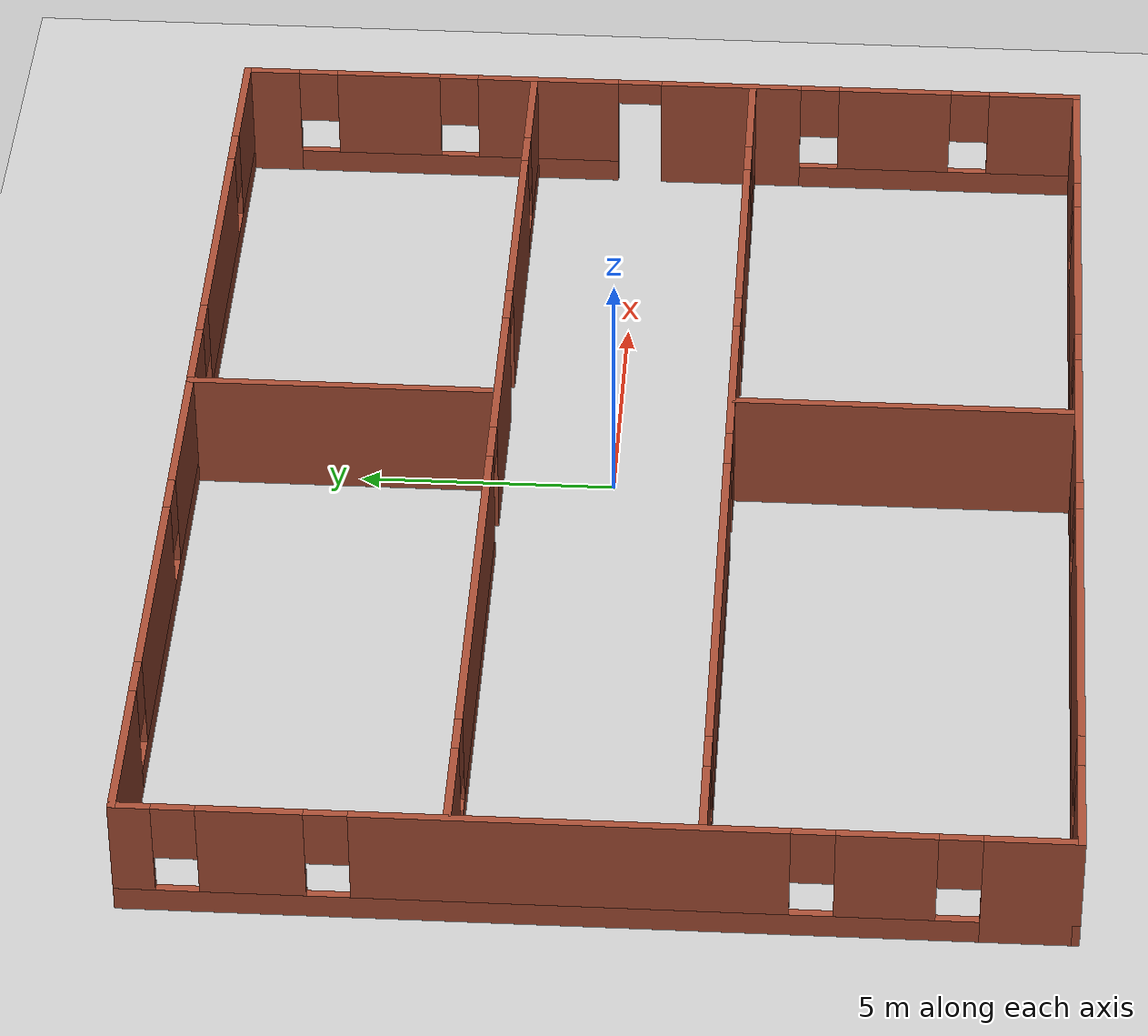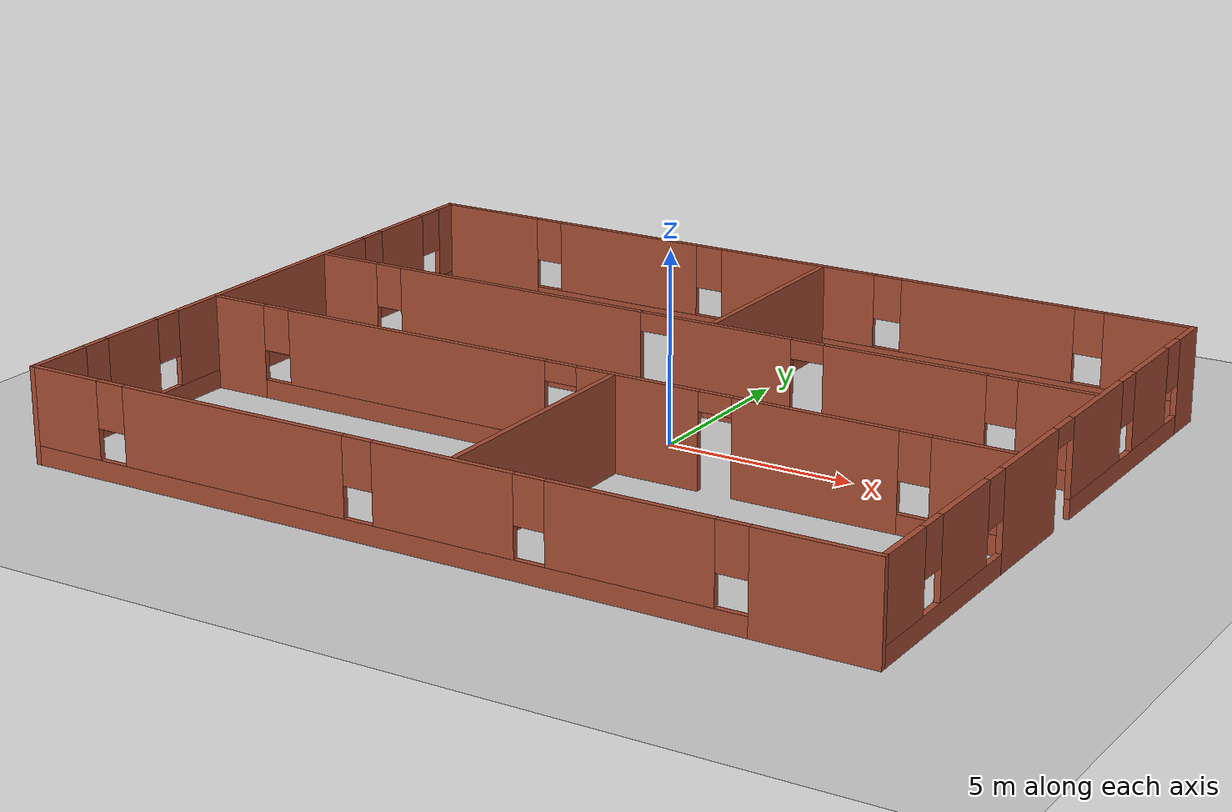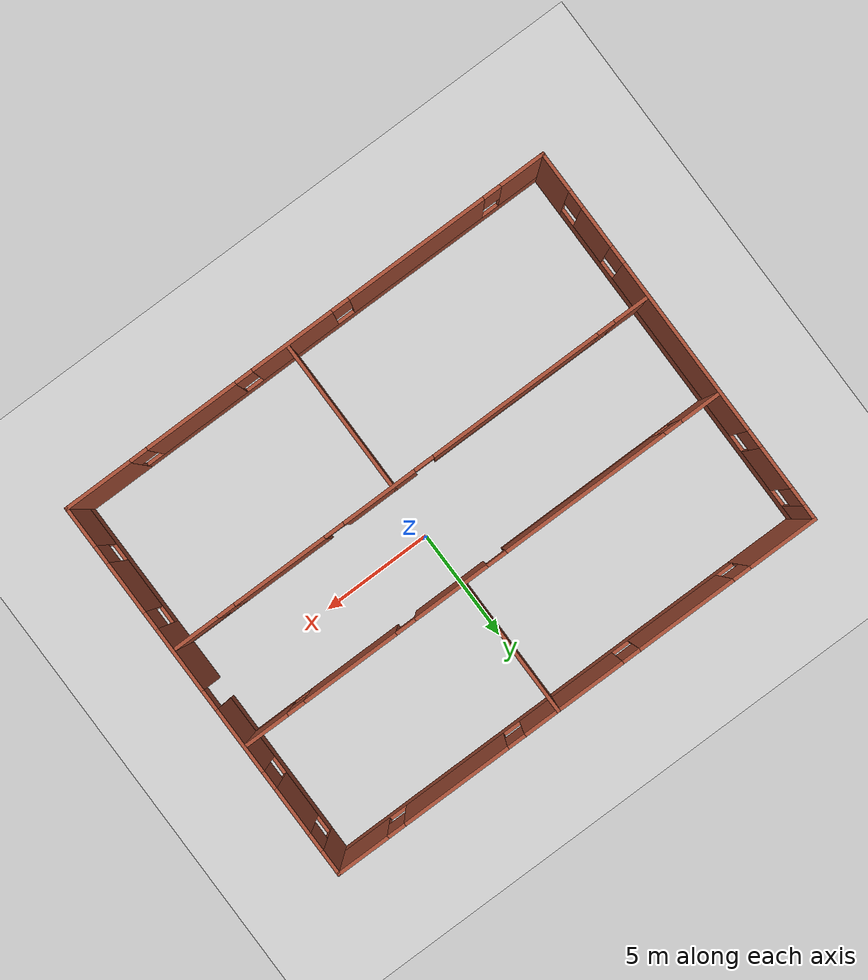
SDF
<sdf version="1.6">
 <world name="default">
  <model name="ground_plane">
   <static>1</static>
   <link name="link">
    <collision name="collision">
     <geometry><plane><normal>0 0 1</normal><size>100 100</size></plane></geometry>
     <surface><friction><ode><mu>100</mu><mu2>50</mu2></ode></friction></surface>
    </collision>
    <visual name="visual">
     <cast_shadows>0</cast_shadows>
     <geometry><plane><normal>0 0 1</normal><size>100 100</size></plane></geometry>
     <material>
      <script><uri>file://media/materials/scripts/gazebo.material</uri><name>Gazebo/Grey</name></script>
     </material>
    </visual>
   </link>
  </model>
  <model name="HOTEL_SK">
   <pose>-1.03269 -0.373158 0 0 -0 0</pose>
   <link name="Wall_10">
    <pose>-0.035498 -1.92449 0 0 -0 0</pose>
    <visual name="Wall_10_Visual_0">
     <pose>-10.4451 0 1.25 0 -0 0</pose>
     <geometry><box><size>1.60983 0.15 2.5</size></box></geometry>
     <material>
      <script><uri>file://media/materials/scripts/gazebo.material</uri><name>Gazebo/Bricks</name></script>
      <ambient>1 1 1 1</ambient>
     </material>
    </visual>
    <collision name="Wall_10_Collision_0">
     <geometry><box><size>1.60983 0.15 2.5</size></box></geometry>
     <pose>-10.4451 0 1.25 0 -0 0</pose>
    </collision>
    <visual name="Wall_10_Visual_1">
     <pose>1.53547 0 1.25 0 -0 0</pose>
     <geometry><box><size>3.36994 0.15 2.5</size></box></geometry>
     <material>
      <script><uri>file://media/materials/scripts/gazebo.material</uri><name>Gazebo/Bricks</name></script>
      <ambient>1 1 1 1</ambient>
     </material>
    </visual>
    <collision name="Wall_10_Collision_1">
     <geometry><box><size>3.36994 0.15 2.5</size></box></geometry>
     <pose>1.53547 0 1.25 0 -0 0</pose>
    </collision>
    <visual name="Wall_10_Visual_2">
     <pose>6.26349 0 1.25 0 -0 0</pose>
     <geometry><box><size>4.2861 0.15 2.5</size></box></geometry>
     <material>
      <script><uri>file://media/materials/scripts/gazebo.material</uri><name>Gazebo/Bricks</name></script>
      <ambient>1 1 1 1</ambient>
     </material>
    </visual>
    <collision name="Wall_10_Collision_2">
     <geometry><box><size>4.2861 0.15 2.5</size></box></geometry>
     <pose>6.26349 0 1.25 0 -0 0</pose>
    </collision>
    <visual name="Wall_10_Visual_3">
     <pose>-5.34484 0 0.25 0 -0 0</pose>
     <geometry><box><size>8.59066 0.15 0.5</size></box></geometry>
     <material>
      <script><uri>file://media/materials/scripts/gazebo.material</uri><name>Gazebo/Bricks</name></script>
      <ambient>1 1 1 1</ambient>
     </material>
    </visual>
    <collision name="Wall_10_Collision_3">
     <geometry><box><size>8.59066 0.15 0.5</size></box></geometry>
     <pose>-5.34484 0 0.25 0 -0 0</pose>
    </collision>
    <visual name="Wall_10_Visual_4">
     <pose>9.82827 0 0.25 0 -0 0</pose>
     <geometry><box><size>2.84346 0.15 0.5</size></box></geometry>
     <material>
      <script><uri>file://media/materials/scripts/gazebo.material</uri><name>Gazebo/Bricks</name></script>
      <ambient>1 1 1 1</ambient>
     </material>
    </visual>
    <collision name="Wall_10_Collision_4">
     <geometry><box><size>2.84346 0.15 0.5</size></box></geometry>
     <pose>9.82827 0 0.25 0 -0 0</pose>
    </collision>
    <visual name="Wall_10_Visual_5">
     <pose>-4.94484 0 1.5 0 -0 0</pose>
     <geometry><box><size>7.79066 0.15 2</size></box></geometry>
     <material>
      <script><uri>file://media/materials/scripts/gazebo.material</uri><name>Gazebo/Bricks</name></script>
      <ambient>1 1 1 1</ambient>
     </material>
    </visual>
    <collision name="Wall_10_Collision_5">
     <geometry><box><size>7.79066 0.15 2</size></box></geometry>
     <pose>-4.94484 0 1.5 0 -0 0</pose>
    </collision>
    <visual name="Wall_10_Visual_6">
     <pose>-4.94484 0 1.5 0 -0 0</pose>
     <geometry><box><size>7.79066 0.15 2</size></box></geometry>
     <material>
      <script><uri>file://media/materials/scripts/gazebo.material</uri><name>Gazebo/Bricks</name></script>
      <ambient>1 1 1 1</ambient>
     </material>
    </visual>
    <collision name="Wall_10_Collision_6">
     <geometry><box><size>7.79066 0.15 2</size></box></geometry>
     <pose>-4.94484 0 1.5 0 -0 0</pose>
    </collision>
    <visual name="Wall_10_Visual_7">
     <pose>10.2283 0 1.5 0 -0 0</pose>
     <geometry><box><size>2.04346 0.15 2</size></box></geometry>
     <material>
      <script><uri>file://media/materials/scripts/gazebo.material</uri><name>Gazebo/Bricks</name></script>
      <ambient>1 1 1 1</ambient>
     </material>
    </visual>
    <collision name="Wall_10_Collision_7">
     <geometry><box><size>2.04346 0.15 2</size></box></geometry>
     <pose>10.2283 0 1.5 0 -0 0</pose>
    </collision>
    <visual name="Wall_10_Visual_8">
     <pose>-9.24017 0 1.9 0 -0 0</pose>
     <geometry><box><size>0.8 0.15 1.2</size></box></geometry>
     <material>
      <script><uri>file://media/materials/scripts/gazebo.material</uri><name>Gazebo/Bricks</name></script>
      <ambient>1 1 1 1</ambient>
     </material>
    </visual>
    <collision name="Wall_10_Collision_8">
     <geometry><box><size>0.8 0.15 1.2</size></box></geometry>
     <pose>-9.24017 0 1.9 0 -0 0</pose>
    </collision>
    <visual name="Wall_10_Visual_9">
     <pose>8.80654 0 1.9 0 -0 0</pose>
     <geometry><box><size>0.8 0.15 1.2</size></box></geometry>
     <material>
      <script><uri>file://media/materials/scripts/gazebo.material</uri><name>Gazebo/Bricks</name></script>
      <ambient>1 1 1 1</ambient>
     </material>
    </visual>
    <collision name="Wall_10_Collision_9">
     <geometry><box><size>0.8 0.15 1.2</size></box></geometry>
     <pose>8.80654 0 1.9 0 -0 0</pose>
    </collision>
    <visual name="Wall_10_Visual_10">
     <pose>3.67044 0 2.25 0 -0 0</pose>
     <geometry><box><size>0.9 0.15 0.5</size></box></geometry>
     <material>
      <script><uri>file://media/materials/scripts/gazebo.material</uri><name>Gazebo/Bricks</name></script>
      <ambient>1 1 1 1</ambient>
     </material>
    </visual>
    <collision name="Wall_10_Collision_10">
     <geometry><box><size>0.9 0.15 0.5</size></box></geometry>
     <pose>3.67044 0 2.25 0 -0 0</pose>
    </collision>
    <visual name="Wall_10_Visual_11">
     <pose>-0.599507 0 2.25 0 -0 0</pose>
     <geometry><box><size>0.9 0.15 0.5</size></box></geometry>
     <material>
      <script><uri>file://media/materials/scripts/gazebo.material</uri><name>Gazebo/Bricks</name></script>
      <ambient>1 1 1 1</ambient>
     </material>
    </visual>
    <collision name="Wall_10_Collision_11">
     <geometry><box><size>0.9 0.15 0.5</size></box></geometry>
     <pose>-0.599507 0 2.25 0 -0 0</pose>
    </collision>
    <visual name="Wall_10_Visual_12">
     <pose>-0.599507 0 2.25 0 -0 0</pose>
     <geometry><box><size>0.9 0.15 0.5</size></box></geometry>
     <material>
      <script><uri>file://media/materials/scripts/gazebo.material</uri><name>Gazebo/Bricks</name></script>
      <ambient>1 1 1 1</ambient>
     </material>
    </visual>
    <collision name="Wall_10_Collision_12">
     <geometry><box><size>0.9 0.15 0.5</size></box></geometry>
     <pose>-0.599507 0 2.25 0 -0 0</pose>
    </collision>
   </link>
   <link name="Wall_12">
    <collision name="Wall_12_Collision">
     <geometry><box><size>6 0.15 2.5</size></box></geometry>
     <pose>0 0 1.25 0 -0 0</pose>
    </collision>
    <visual name="Wall_12_Visual">
     <pose>0 0 1.25 0 -0 0</pose>
     <geometry><box><size>6 0.15 2.5</size></box></geometry>
     <material>
      <script><uri>file://media/materials/scripts/gazebo.material</uri><name>Gazebo/Bricks</name></script>
      <ambient>1 1 1 1</ambient>
     </material>
    </visual>
    <pose>0.890996 5.73932 0 0 0 -1.5708</pose>
   </link>
   <link name="Wall_14">
    <collision name="Wall_14_Collision">
     <geometry><box><size>6.75 0.15 2.5</size></box></geometry>
     <pose>0 0 1.25 0 -0 0</pose>
    </collision>
    <visual name="Wall_14_Visual">
     <pose>0 0 1.25 0 -0 0</pose>
     <geometry><box><size>6.75 0.15 2.5</size></box></geometry>
     <material>
      <script><uri>file://media/materials/scripts/gazebo.material</uri><name>Gazebo/Bricks</name></script>
      <ambient>1 1 1 1</ambient>
     </material>
    </visual>
    <pose>0.855817 -5.22449 0 0 0 -1.5708</pose>
   </link>
   <link name="Wall_2">
    <pose>11.3 0 0 0 0 -1.5708</pose>
    <visual name="Wall_2_Visual_0">
     <pose>-8.1684 0 1.25 0 -0 0</pose>
     <geometry><box><size>1.16319 0.15 2.5</size></box></geometry>
     <material>
      <script><uri>file://media/materials/scripts/gazebo.material</uri><name>Gazebo/Bricks</name></script>
      <ambient>1 1 1 1</ambient>
     </material>
    </visual>
    <collision name="Wall_2_Collision_0">
     <geometry><box><size>1.16319 0.15 2.5</size></box></geometry>
     <pose>-8.1684 0 1.25 0 -0 0</pose>
    </collision>
    <visual name="Wall_2_Visual_1">
     <pose>1.47458 0 1.25 0 -0 0</pose>
     <geometry><box><size>2.91413 0.15 2.5</size></box></geometry>
     <material>
      <script><uri>file://media/materials/scripts/gazebo.material</uri><name>Gazebo/Bricks</name></script>
      <ambient>1 1 1 1</ambient>
     </material>
    </visual>
    <collision name="Wall_2_Collision_1">
     <geometry><box><size>2.91413 0.15 2.5</size></box></geometry>
     <pose>1.47458 0 1.25 0 -0 0</pose>
    </collision>
    <visual name="Wall_2_Visual_2">
     <pose>-4.23465 0 0.25 0 -0 0</pose>
     <geometry><box><size>6.70432 0.15 0.5</size></box></geometry>
     <material>
      <script><uri>file://media/materials/scripts/gazebo.material</uri><name>Gazebo/Bricks</name></script>
      <ambient>1 1 1 1</ambient>
     </material>
    </visual>
    <collision name="Wall_2_Collision_2">
     <geometry><box><size>6.70432 0.15 0.5</size></box></geometry>
     <pose>-4.23465 0 0.25 0 -0 0</pose>
    </collision>
    <visual name="Wall_2_Visual_3">
     <pose>5.84082 0 0.25 0 -0 0</pose>
     <geometry><box><size>5.81836 0.15 0.5</size></box></geometry>
     <material>
      <script><uri>file://media/materials/scripts/gazebo.material</uri><name>Gazebo/Bricks</name></script>
      <ambient>1 1 1 1</ambient>
     </material>
    </visual>
    <collision name="Wall_2_Collision_3">
     <geometry><box><size>5.81836 0.15 0.5</size></box></geometry>
     <pose>5.84082 0 0.25 0 -0 0</pose>
    </collision>
    <visual name="Wall_2_Visual_4">
     <pose>-5.7093 0 1.5 0 -0 0</pose>
     <geometry><box><size>2.15502 0.15 2</size></box></geometry>
     <material>
      <script><uri>file://media/materials/scripts/gazebo.material</uri><name>Gazebo/Bricks</name></script>
      <ambient>1 1 1 1</ambient>
     </material>
    </visual>
    <collision name="Wall_2_Collision_4">
     <geometry><box><size>2.15502 0.15 2</size></box></geometry>
     <pose>-5.7093 0 1.5 0 -0 0</pose>
    </collision>
    <visual name="Wall_2_Visual_5">
     <pose>-2.35714 0 1.5 0 -0 0</pose>
     <geometry><box><size>2.94931 0.15 2</size></box></geometry>
     <material>
      <script><uri>file://media/materials/scripts/gazebo.material</uri><name>Gazebo/Bricks</name></script>
      <ambient>1 1 1 1</ambient>
     </material>
    </visual>
    <collision name="Wall_2_Collision_5">
     <geometry><box><size>2.94931 0.15 2</size></box></geometry>
     <pose>-2.35714 0 1.5 0 -0 0</pose>
    </collision>
    <visual name="Wall_2_Visual_6">
     <pose>-2.35714 0 1.5 0 -0 0</pose>
     <geometry><box><size>2.94931 0.15 2</size></box></geometry>
     <material>
      <script><uri>file://media/materials/scripts/gazebo.material</uri><name>Gazebo/Bricks</name></script>
      <ambient>1 1 1 1</ambient>
     </material>
    </visual>
    <collision name="Wall_2_Collision_6">
     <geometry><box><size>2.94931 0.15 2</size></box></geometry>
     <pose>-2.35714 0 1.5 0 -0 0</pose>
    </collision>
    <visual name="Wall_2_Visual_7">
     <pose>4.8971 0 1.5 0 -0 0</pose>
     <geometry><box><size>2.33091 0.15 2</size></box></geometry>
     <material>
      <script><uri>file://media/materials/scripts/gazebo.material</uri><name>Gazebo/Bricks</name></script>
      <ambient>1 1 1 1</ambient>
     </material>
    </visual>
    <collision name="Wall_2_Collision_7">
     <geometry><box><size>2.33091 0.15 2</size></box></geometry>
     <pose>4.8971 0 1.5 0 -0 0</pose>
    </collision>
    <visual name="Wall_2_Visual_8">
     <pose>7.80628 0 1.5 0 -0 0</pose>
     <geometry><box><size>1.88745 0.15 2</size></box></geometry>
     <material>
      <script><uri>file://media/materials/scripts/gazebo.material</uri><name>Gazebo/Bricks</name></script>
      <ambient>1 1 1 1</ambient>
     </material>
    </visual>
    <collision name="Wall_2_Collision_8">
     <geometry><box><size>1.88745 0.15 2</size></box></geometry>
     <pose>7.80628 0 1.5 0 -0 0</pose>
    </collision>
    <visual name="Wall_2_Visual_9">
     <pose>-7.18681 0 1.9 0 -0 0</pose>
     <geometry><box><size>0.8 0.15 1.2</size></box></geometry>
     <material>
      <script><uri>file://media/materials/scripts/gazebo.material</uri><name>Gazebo/Bricks</name></script>
      <ambient>1 1 1 1</ambient>
     </material>
    </visual>
    <collision name="Wall_2_Collision_9">
     <geometry><box><size>0.8 0.15 1.2</size></box></geometry>
     <pose>-7.18681 0 1.9 0 -0 0</pose>
    </collision>
    <visual name="Wall_2_Visual_10">
     <pose>3.33164 0 1.9 0 -0 0</pose>
     <geometry><box><size>0.8 0.15 1.2</size></box></geometry>
     <material>
      <script><uri>file://media/materials/scripts/gazebo.material</uri><name>Gazebo/Bricks</name></script>
      <ambient>1 1 1 1</ambient>
     </material>
    </visual>
    <collision name="Wall_2_Collision_10">
     <geometry><box><size>0.8 0.15 1.2</size></box></geometry>
     <pose>3.33164 0 1.9 0 -0 0</pose>
    </collision>
    <visual name="Wall_2_Visual_11">
     <pose>-4.23179 0 1.9 0 -0 0</pose>
     <geometry><box><size>0.8 0.15 1.2</size></box></geometry>
     <material>
      <script><uri>file://media/materials/scripts/gazebo.material</uri><name>Gazebo/Bricks</name></script>
      <ambient>1 1 1 1</ambient>
     </material>
    </visual>
    <collision name="Wall_2_Collision_11">
     <geometry><box><size>0.8 0.15 1.2</size></box></geometry>
     <pose>-4.23179 0 1.9 0 -0 0</pose>
    </collision>
    <visual name="Wall_2_Visual_12">
     <pose>6.46255 0 1.9 0 -0 0</pose>
     <geometry><box><size>0.8 0.15 1.2</size></box></geometry>
     <material>
      <script><uri>file://media/materials/scripts/gazebo.material</uri><name>Gazebo/Bricks</name></script>
      <ambient>1 1 1 1</ambient>
     </material>
    </visual>
    <collision name="Wall_2_Collision_12">
     <geometry><box><size>0.8 0.15 1.2</size></box></geometry>
     <pose>6.46255 0 1.9 0 -0 0</pose>
    </collision>
    <visual name="Wall_2_Visual_13">
     <pose>-0.432485 0 2.25 0 -0 0</pose>
     <geometry><box><size>0.9 0.15 0.5</size></box></geometry>
     <material>
      <script><uri>file://media/materials/scripts/gazebo.material</uri><name>Gazebo/Bricks</name></script>
      <ambient>1 1 1 1</ambient>
     </material>
    </visual>
    <collision name="Wall_2_Collision_13">
     <geometry><box><size>0.9 0.15 0.5</size></box></geometry>
     <pose>-0.432485 0 2.25 0 -0 0</pose>
    </collision>
    <visual name="Wall_2_Visual_14">
     <pose>-0.432485 0 2.25 0 -0 0</pose>
     <geometry><box><size>0.9 0.15 0.5</size></box></geometry>
     <material>
      <script><uri>file://media/materials/scripts/gazebo.material</uri><name>Gazebo/Bricks</name></script>
      <ambient>1 1 1 1</ambient>
     </material>
    </visual>
    <collision name="Wall_2_Collision_14">
     <geometry><box><size>0.9 0.15 0.5</size></box></geometry>
     <pose>-0.432485 0 2.25 0 -0 0</pose>
    </collision>
   </link>
   <link name="Wall_3">
    <pose>0 -8.675 0 0 -0 3.14159</pose>
    <visual name="Wall_3_Visual_0">
     <pose>-9.83329 0 1.25 0 -0 0</pose>
     <geometry><box><size>3.08343 0.15 2.5</size></box></geometry>
     <material>
      <script><uri>file://media/materials/scripts/gazebo.material</uri><name>Gazebo/Bricks</name></script>
      <ambient>1 1 1 1</ambient>
     </material>
    </visual>
    <collision name="Wall_3_Collision_0">
     <geometry><box><size>3.08343 0.15 2.5</size></box></geometry>
     <pose>-9.83329 0 1.25 0 -0 0</pose>
    </collision>
    <visual name="Wall_3_Visual_1">
     <pose>1.54171 0 0.25 0 -0 0</pose>
     <geometry><box><size>19.6666 0.15 0.5</size></box></geometry>
     <material>
      <script><uri>file://media/materials/scripts/gazebo.material</uri><name>Gazebo/Bricks</name></script>
      <ambient>1 1 1 1</ambient>
     </material>
    </visual>
    <collision name="Wall_3_Collision_1">
     <geometry><box><size>19.6666 0.15 0.5</size></box></geometry>
     <pose>1.54171 0 0.25 0 -0 0</pose>
    </collision>
    <visual name="Wall_3_Visual_2">
     <pose>-5.39388 0 1.5 0 -0 0</pose>
     <geometry><box><size>4.19538 0.15 2</size></box></geometry>
     <material>
      <script><uri>file://media/materials/scripts/gazebo.material</uri><name>Gazebo/Bricks</name></script>
      <ambient>1 1 1 1</ambient>
     </material>
    </visual>
    <collision name="Wall_3_Collision_2">
     <geometry><box><size>4.19538 0.15 2</size></box></geometry>
     <pose>-5.39388 0 1.5 0 -0 0</pose>
    </collision>
    <visual name="Wall_3_Visual_3">
     <pose>-0.609566 0 1.5 0 -0 0</pose>
     <geometry><box><size>3.77324 0.15 2</size></box></geometry>
     <material>
      <script><uri>file://media/materials/scripts/gazebo.material</uri><name>Gazebo/Bricks</name></script>
      <ambient>1 1 1 1</ambient>
     </material>
    </visual>
    <collision name="Wall_3_Collision_3">
     <geometry><box><size>3.77324 0.15 2</size></box></geometry>
     <pose>-0.609566 0 1.5 0 -0 0</pose>
    </collision>
    <visual name="Wall_3_Visual_4">
     <pose>5.28288 0 1.5 0 -0 0</pose>
     <geometry><box><size>6.41165 0.15 2</size></box></geometry>
     <material>
      <script><uri>file://media/materials/scripts/gazebo.material</uri><name>Gazebo/Bricks</name></script>
      <ambient>1 1 1 1</ambient>
     </material>
    </visual>
    <collision name="Wall_3_Collision_4">
     <geometry><box><size>6.41165 0.15 2</size></box></geometry>
     <pose>5.28288 0 1.5 0 -0 0</pose>
    </collision>
    <visual name="Wall_3_Visual_5">
     <pose>10.3318 0 1.5 0 -0 0</pose>
     <geometry><box><size>2.0863 0.15 2</size></box></geometry>
     <material>
      <script><uri>file://media/materials/scripts/gazebo.material</uri><name>Gazebo/Bricks</name></script>
      <ambient>1 1 1 1</ambient>
     </material>
    </visual>
    <collision name="Wall_3_Collision_5">
     <geometry><box><size>2.0863 0.15 2</size></box></geometry>
     <pose>10.3318 0 1.5 0 -0 0</pose>
    </collision>
    <visual name="Wall_3_Visual_6">
     <pose>-7.89157 0 1.9 0 -0 0</pose>
     <geometry><box><size>0.8 0.15 1.2</size></box></geometry>
     <material>
      <script><uri>file://media/materials/scripts/gazebo.material</uri><name>Gazebo/Bricks</name></script>
      <ambient>1 1 1 1</ambient>
     </material>
    </visual>
    <collision name="Wall_3_Collision_6">
     <geometry><box><size>0.8 0.15 1.2</size></box></geometry>
     <pose>-7.89157 0 1.9 0 -0 0</pose>
    </collision>
    <visual name="Wall_3_Visual_7">
     <pose>-2.89619 0 1.9 0 -0 0</pose>
     <geometry><box><size>0.8 0.15 1.2</size></box></geometry>
     <material>
      <script><uri>file://media/materials/scripts/gazebo.material</uri><name>Gazebo/Bricks</name></script>
      <ambient>1 1 1 1</ambient>
     </material>
    </visual>
    <collision name="Wall_3_Collision_7">
     <geometry><box><size>0.8 0.15 1.2</size></box></geometry>
     <pose>-2.89619 0 1.9 0 -0 0</pose>
    </collision>
    <visual name="Wall_3_Visual_8">
     <pose>1.67705 0 1.9 0 -0 0</pose>
     <geometry><box><size>0.8 0.15 1.2</size></box></geometry>
     <material>
      <script><uri>file://media/materials/scripts/gazebo.material</uri><name>Gazebo/Bricks</name></script>
      <ambient>1 1 1 1</ambient>
     </material>
    </visual>
    <collision name="Wall_3_Collision_8">
     <geometry><box><size>0.8 0.15 1.2</size></box></geometry>
     <pose>1.67705 0 1.9 0 -0 0</pose>
    </collision>
    <visual name="Wall_3_Visual_9">
     <pose>8.8887 0 1.9 0 -0 0</pose>
     <geometry><box><size>0.8 0.15 1.2</size></box></geometry>
     <material>
      <script><uri>file://media/materials/scripts/gazebo.material</uri><name>Gazebo/Bricks</name></script>
      <ambient>1 1 1 1</ambient>
     </material>
    </visual>
    <collision name="Wall_3_Collision_9">
     <geometry><box><size>0.8 0.15 1.2</size></box></geometry>
     <pose>8.8887 0 1.9 0 -0 0</pose>
    </collision>
   </link>
   <link name="Wall_4">
    <pose>-11.3 0 0 0 -0 1.5708</pose>
    <visual name="Wall_4_Visual_0">
     <pose>-7.84145 0 1.25 0 -0 0</pose>
     <geometry><box><size>1.81709 0.15 2.5</size></box></geometry>
     <material>
      <script><uri>file://media/materials/scripts/gazebo.material</uri><name>Gazebo/Bricks</name></script>
      <ambient>1 1 1 1</ambient>
     </material>
    </visual>
    <collision name="Wall_4_Collision_0">
     <geometry><box><size>1.81709 0.15 2.5</size></box></geometry>
     <pose>-7.84145 0 1.25 0 -0 0</pose>
    </collision>
    <visual name="Wall_4_Visual_1">
     <pose>0.908545 0 0.25 0 -0 0</pose>
     <geometry><box><size>15.6829 0.15 0.5</size></box></geometry>
     <material>
      <script><uri>file://media/materials/scripts/gazebo.material</uri><name>Gazebo/Bricks</name></script>
      <ambient>1 1 1 1</ambient>
     </material>
    </visual>
    <collision name="Wall_4_Collision_1">
     <geometry><box><size>15.6829 0.15 0.5</size></box></geometry>
     <pose>0.908545 0 0.25 0 -0 0</pose>
    </collision>
    <visual name="Wall_4_Visual_2">
     <pose>-5.21371 0 1.5 0 -0 0</pose>
     <geometry><box><size>1.83841 0.15 2</size></box></geometry>
     <material>
      <script><uri>file://media/materials/scripts/gazebo.material</uri><name>Gazebo/Bricks</name></script>
      <ambient>1 1 1 1</ambient>
     </material>
    </visual>
    <collision name="Wall_4_Collision_2">
     <geometry><box><size>1.83841 0.15 2</size></box></geometry>
     <pose>-5.21371 0 1.5 0 -0 0</pose>
    </collision>
    <visual name="Wall_4_Visual_3">
     <pose>0.467664 0 1.5 0 -0 0</pose>
     <geometry><box><size>7.92433 0.15 2</size></box></geometry>
     <material>
      <script><uri>file://media/materials/scripts/gazebo.material</uri><name>Gazebo/Bricks</name></script>
      <ambient>1 1 1 1</ambient>
     </material>
    </visual>
    <collision name="Wall_4_Collision_3">
     <geometry><box><size>7.92433 0.15 2</size></box></geometry>
     <pose>0.467664 0 1.5 0 -0 0</pose>
    </collision>
    <visual name="Wall_4_Visual_4">
     <pose>6.2018 0 1.5 0 -0 0</pose>
     <geometry><box><size>1.94394 0.15 2</size></box></geometry>
     <material>
      <script><uri>file://media/materials/scripts/gazebo.material</uri><name>Gazebo/Bricks</name></script>
      <ambient>1 1 1 1</ambient>
     </material>
    </visual>
    <collision name="Wall_4_Collision_4">
     <geometry><box><size>1.94394 0.15 2</size></box></geometry>
     <pose>6.2018 0 1.5 0 -0 0</pose>
    </collision>
    <visual name="Wall_4_Visual_5">
     <pose>8.36189 0 1.5 0 -0 0</pose>
     <geometry><box><size>0.776226 0.15 2</size></box></geometry>
     <material>
      <script><uri>file://media/materials/scripts/gazebo.material</uri><name>Gazebo/Bricks</name></script>
      <ambient>1 1 1 1</ambient>
     </material>
    </visual>
    <collision name="Wall_4_Collision_5">
     <geometry><box><size>0.776226 0.15 2</size></box></geometry>
     <pose>8.36189 0 1.5 0 -0 0</pose>
    </collision>
    <visual name="Wall_4_Visual_6">
     <pose>-6.53291 0 1.9 0 -0 0</pose>
     <geometry><box><size>0.8 0.15 1.2</size></box></geometry>
     <material>
      <script><uri>file://media/materials/scripts/gazebo.material</uri><name>Gazebo/Bricks</name></script>
      <ambient>1 1 1 1</ambient>
     </material>
    </visual>
    <collision name="Wall_4_Collision_6">
     <geometry><box><size>0.8 0.15 1.2</size></box></geometry>
     <pose>-6.53291 0 1.9 0 -0 0</pose>
    </collision>
    <visual name="Wall_4_Visual_7">
     <pose>-3.8945 0 1.9 0 -0 0</pose>
     <geometry><box><size>0.8 0.15 1.2</size></box></geometry>
     <material>
      <script><uri>file://media/materials/scripts/gazebo.material</uri><name>Gazebo/Bricks</name></script>
      <ambient>1 1 1 1</ambient>
     </material>
    </visual>
    <collision name="Wall_4_Collision_7">
     <geometry><box><size>0.8 0.15 1.2</size></box></geometry>
     <pose>-3.8945 0 1.9 0 -0 0</pose>
    </collision>
    <visual name="Wall_4_Visual_8">
     <pose>4.82983 0 1.9 0 -0 0</pose>
     <geometry><box><size>0.8 0.15 1.2</size></box></geometry>
     <material>
      <script><uri>file://media/materials/scripts/gazebo.material</uri><name>Gazebo/Bricks</name></script>
      <ambient>1 1 1 1</ambient>
     </material>
    </visual>
    <collision name="Wall_4_Collision_8">
     <geometry><box><size>0.8 0.15 1.2</size></box></geometry>
     <pose>4.82983 0 1.9 0 -0 0</pose>
    </collision>
    <visual name="Wall_4_Visual_9">
     <pose>7.57377 0 1.9 0 -0 0</pose>
     <geometry><box><size>0.8 0.15 1.2</size></box></geometry>
     <material>
      <script><uri>file://media/materials/scripts/gazebo.material</uri><name>Gazebo/Bricks</name></script>
      <ambient>1 1 1 1</ambient>
     </material>
    </visual>
    <collision name="Wall_4_Collision_9">
     <geometry><box><size>0.8 0.15 1.2</size></box></geometry>
     <pose>7.57377 0 1.9 0 -0 0</pose>
    </collision>
   </link>
   <link name="Wall_6">
    <pose>0 8.675 0 0 -0 0</pose>
    <visual name="Wall_6_Visual_0">
     <pose>-9.80417 0 1.25 0 -0 0</pose>
     <geometry><box><size>3.14166 0.15 2.5</size></box></geometry>
     <material>
      <script><uri>file://media/materials/scripts/gazebo.material</uri><name>Gazebo/Bricks</name></script>
      <ambient>1 1 1 1</ambient>
     </material>
    </visual>
    <collision name="Wall_6_Collision_0">
     <geometry><box><size>3.14166 0.15 2.5</size></box></geometry>
     <pose>-9.80417 0 1.25 0 -0 0</pose>
    </collision>
    <visual name="Wall_6_Visual_1">
     <pose>1.57083 0 0.25 0 -0 0</pose>
     <geometry><box><size>19.6083 0.15 0.5</size></box></geometry>
     <material>
      <script><uri>file://media/materials/scripts/gazebo.material</uri><name>Gazebo/Bricks</name></script>
      <ambient>1 1 1 1</ambient>
     </material>
    </visual>
    <collision name="Wall_6_Collision_1">
     <geometry><box><size>19.6083 0.15 0.5</size></box></geometry>
     <pose>1.57083 0 0.25 0 -0 0</pose>
    </collision>
    <visual name="Wall_6_Visual_2">
     <pose>-5.21252 0 1.5 0 -0 0</pose>
     <geometry><box><size>4.44163 0.15 2</size></box></geometry>
     <material>
      <script><uri>file://media/materials/scripts/gazebo.material</uri><name>Gazebo/Bricks</name></script>
      <ambient>1 1 1 1</ambient>
     </material>
    </visual>
    <collision name="Wall_6_Collision_2">
     <geometry><box><size>4.44163 0.15 2</size></box></geometry>
     <pose>-5.21252 0 1.5 0 -0 0</pose>
    </collision>
    <visual name="Wall_6_Visual_3">
     <pose>0.134653 0 1.5 0 -0 0</pose>
     <geometry><box><size>4.65271 0.15 2</size></box></geometry>
     <material>
      <script><uri>file://media/materials/scripts/gazebo.material</uri><name>Gazebo/Bricks</name></script>
      <ambient>1 1 1 1</ambient>
     </material>
    </visual>
    <collision name="Wall_6_Collision_3">
     <geometry><box><size>4.65271 0.15 2</size></box></geometry>
     <pose>0.134653 0 1.5 0 -0 0</pose>
    </collision>
    <visual name="Wall_6_Visual_4">
     <pose>5.71049 0 1.5 0 -0 0</pose>
     <geometry><box><size>4.89896 0.15 2</size></box></geometry>
     <material>
      <script><uri>file://media/materials/scripts/gazebo.material</uri><name>Gazebo/Bricks</name></script>
      <ambient>1 1 1 1</ambient>
     </material>
    </visual>
    <collision name="Wall_6_Collision_4">
     <geometry><box><size>4.89896 0.15 2</size></box></geometry>
     <pose>5.71049 0 1.5 0 -0 0</pose>
    </collision>
    <visual name="Wall_6_Visual_5">
     <pose>10.1675 0 1.5 0 -0 0</pose>
     <geometry><box><size>2.41503 0.15 2</size></box></geometry>
     <material>
      <script><uri>file://media/materials/scripts/gazebo.material</uri><name>Gazebo/Bricks</name></script>
      <ambient>1 1 1 1</ambient>
     </material>
    </visual>
    <collision name="Wall_6_Collision_5">
     <geometry><box><size>2.41503 0.15 2</size></box></geometry>
     <pose>10.1675 0 1.5 0 -0 0</pose>
    </collision>
    <visual name="Wall_6_Visual_6">
     <pose>-7.83334 0 1.9 0 -0 0</pose>
     <geometry><box><size>0.8 0.15 1.2</size></box></geometry>
     <material>
      <script><uri>file://media/materials/scripts/gazebo.material</uri><name>Gazebo/Bricks</name></script>
      <ambient>1 1 1 1</ambient>
     </material>
    </visual>
    <collision name="Wall_6_Collision_6">
     <geometry><box><size>0.8 0.15 1.2</size></box></geometry>
     <pose>-7.83334 0 1.9 0 -0 0</pose>
    </collision>
    <visual name="Wall_6_Visual_7">
     <pose>-2.5917 0 1.9 0 -0 0</pose>
     <geometry><box><size>0.8 0.15 1.2</size></box></geometry>
     <material>
      <script><uri>file://media/materials/scripts/gazebo.material</uri><name>Gazebo/Bricks</name></script>
      <ambient>1 1 1 1</ambient>
     </material>
    </visual>
    <collision name="Wall_6_Collision_7">
     <geometry><box><size>0.8 0.15 1.2</size></box></geometry>
     <pose>-2.5917 0 1.9 0 -0 0</pose>
    </collision>
    <visual name="Wall_6_Visual_8">
     <pose>2.86101 0 1.9 0 -0 0</pose>
     <geometry><box><size>0.8 0.15 1.2</size></box></geometry>
     <material>
      <script><uri>file://media/materials/scripts/gazebo.material</uri><name>Gazebo/Bricks</name></script>
      <ambient>1 1 1 1</ambient>
     </material>
    </visual>
    <collision name="Wall_6_Collision_8">
     <geometry><box><size>0.8 0.15 1.2</size></box></geometry>
     <pose>2.86101 0 1.9 0 -0 0</pose>
    </collision>
    <visual name="Wall_6_Visual_9">
     <pose>8.55997 0 1.9 0 -0 0</pose>
     <geometry><box><size>0.8 0.15 1.2</size></box></geometry>
     <material>
      <script><uri>file://media/materials/scripts/gazebo.material</uri><name>Gazebo/Bricks</name></script>
      <ambient>1 1 1 1</ambient>
     </material>
    </visual>
    <collision name="Wall_6_Collision_9">
     <geometry><box><size>0.8 0.15 1.2</size></box></geometry>
     <pose>8.55997 0 1.9 0 -0 0</pose>
    </collision>
   </link>
   <link name="Wall_8">
    <pose>-0.00032 2.64875 0 0 -0 0</pose>
    <visual name="Wall_8_Visual_0">
     <pose>-10.3571 0 1.25 0 -0 0</pose>
     <geometry><box><size>1.78573 0.15 2.5</size></box></geometry>
     <material>
      <script><uri>file://media/materials/scripts/gazebo.material</uri><name>Gazebo/Bricks</name></script>
      <ambient>1 1 1 1</ambient>
     </material>
    </visual>
    <collision name="Wall_8_Collision_0">
     <geometry><box><size>1.78573 0.15 2.5</size></box></geometry>
     <pose>-10.3571 0 1.25 0 -0 0</pose>
    </collision>
    <visual name="Wall_8_Visual_1">
     <pose>1.47369 0 1.25 0 -0 0</pose>
     <geometry><box><size>3.42315 0.15 2.5</size></box></geometry>
     <material>
      <script><uri>file://media/materials/scripts/gazebo.material</uri><name>Gazebo/Bricks</name></script>
      <ambient>1 1 1 1</ambient>
     </material>
    </visual>
    <collision name="Wall_8_Collision_1">
     <geometry><box><size>3.42315 0.15 2.5</size></box></geometry>
     <pose>1.47369 0 1.25 0 -0 0</pose>
    </collision>
    <visual name="Wall_8_Visual_2">
     <pose>6.26349 0 1.25 0 -0 0</pose>
     <geometry><box><size>4.35646 0.15 2.5</size></box></geometry>
     <material>
      <script><uri>file://media/materials/scripts/gazebo.material</uri><name>Gazebo/Bricks</name></script>
      <ambient>1 1 1 1</ambient>
     </material>
    </visual>
    <collision name="Wall_8_Collision_2">
     <geometry><box><size>4.35646 0.15 2.5</size></box></geometry>
     <pose>6.26349 0 1.25 0 -0 0</pose>
    </collision>
    <visual name="Wall_8_Visual_3">
     <pose>-5.30108 0 0.25 0 -0 0</pose>
     <geometry><box><size>8.32639 0.15 0.5</size></box></geometry>
     <material>
      <script><uri>file://media/materials/scripts/gazebo.material</uri><name>Gazebo/Bricks</name></script>
      <ambient>1 1 1 1</ambient>
     </material>
    </visual>
    <collision name="Wall_8_Collision_3">
     <geometry><box><size>8.32639 0.15 0.5</size></box></geometry>
     <pose>-5.30108 0 0.25 0 -0 0</pose>
    </collision>
    <visual name="Wall_8_Visual_4">
     <pose>9.84586 0 0.25 0 -0 0</pose>
     <geometry><box><size>2.80828 0.15 0.5</size></box></geometry>
     <material>
      <script><uri>file://media/materials/scripts/gazebo.material</uri><name>Gazebo/Bricks</name></script>
      <ambient>1 1 1 1</ambient>
     </material>
    </visual>
    <collision name="Wall_8_Collision_4">
     <geometry><box><size>2.80828 0.15 0.5</size></box></geometry>
     <pose>9.84586 0 0.25 0 -0 0</pose>
    </collision>
    <visual name="Wall_8_Visual_5">
     <pose>-4.90108 0 1.5 0 -0 0</pose>
     <geometry><box><size>7.52639 0.15 2</size></box></geometry>
     <material>
      <script><uri>file://media/materials/scripts/gazebo.material</uri><name>Gazebo/Bricks</name></script>
      <ambient>1 1 1 1</ambient>
     </material>
    </visual>
    <collision name="Wall_8_Collision_5">
     <geometry><box><size>7.52639 0.15 2</size></box></geometry>
     <pose>-4.90108 0 1.5 0 -0 0</pose>
    </collision>
    <visual name="Wall_8_Visual_6">
     <pose>-4.90108 0 1.5 0 -0 0</pose>
     <geometry><box><size>7.52639 0.15 2</size></box></geometry>
     <material>
      <script><uri>file://media/materials/scripts/gazebo.material</uri><name>Gazebo/Bricks</name></script>
      <ambient>1 1 1 1</ambient>
     </material>
    </visual>
    <collision name="Wall_8_Collision_6">
     <geometry><box><size>7.52639 0.15 2</size></box></geometry>
     <pose>-4.90108 0 1.5 0 -0 0</pose>
    </collision>
    <visual name="Wall_8_Visual_7">
     <pose>10.2459 0 1.5 0 -0 0</pose>
     <geometry><box><size>2.00828 0.15 2</size></box></geometry>
     <material>
      <script><uri>file://media/materials/scripts/gazebo.material</uri><name>Gazebo/Bricks</name></script>
      <ambient>1 1 1 1</ambient>
     </material>
    </visual>
    <collision name="Wall_8_Collision_7">
     <geometry><box><size>2.00828 0.15 2</size></box></geometry>
     <pose>10.2459 0 1.5 0 -0 0</pose>
    </collision>
    <visual name="Wall_8_Visual_8">
     <pose>-9.06427 0 1.9 0 -0 0</pose>
     <geometry><box><size>0.8 0.15 1.2</size></box></geometry>
     <material>
      <script><uri>file://media/materials/scripts/gazebo.material</uri><name>Gazebo/Bricks</name></script>
      <ambient>1 1 1 1</ambient>
     </material>
    </visual>
    <collision name="Wall_8_Collision_8">
     <geometry><box><size>0.8 0.15 1.2</size></box></geometry>
     <pose>-9.06427 0 1.9 0 -0 0</pose>
    </collision>
    <visual name="Wall_8_Visual_9">
     <pose>8.84172 0 1.9 0 -0 0</pose>
     <geometry><box><size>0.8 0.15 1.2</size></box></geometry>
     <material>
      <script><uri>file://media/materials/scripts/gazebo.material</uri><name>Gazebo/Bricks</name></script>
      <ambient>1 1 1 1</ambient>
     </material>
    </visual>
    <collision name="Wall_8_Collision_9">
     <geometry><box><size>0.8 0.15 1.2</size></box></geometry>
     <pose>8.84172 0 1.9 0 -0 0</pose>
    </collision>
    <visual name="Wall_8_Visual_10">
     <pose>3.63526 0 2.25 0 -0 0</pose>
     <geometry><box><size>0.9 0.15 0.5</size></box></geometry>
     <material>
      <script><uri>file://media/materials/scripts/gazebo.material</uri><name>Gazebo/Bricks</name></script>
      <ambient>1 1 1 1</ambient>
     </material>
    </visual>
    <collision name="Wall_8_Collision_10">
     <geometry><box><size>0.9 0.15 0.5</size></box></geometry>
     <pose>3.63526 0 2.25 0 -0 0</pose>
    </collision>
    <visual name="Wall_8_Visual_11">
     <pose>-0.687886 0 2.25 0 -0 0</pose>
     <geometry><box><size>0.9 0.15 0.5</size></box></geometry>
     <material>
      <script><uri>file://media/materials/scripts/gazebo.material</uri><name>Gazebo/Bricks</name></script>
      <ambient>1 1 1 1</ambient>
     </material>
    </visual>
    <collision name="Wall_8_Collision_11">
     <geometry><box><size>0.9 0.15 0.5</size></box></geometry>
     <pose>-0.687886 0 2.25 0 -0 0</pose>
    </collision>
    <visual name="Wall_8_Visual_12">
     <pose>-0.687886 0 2.25 0 -0 0</pose>
     <geometry><box><size>0.9 0.15 0.5</size></box></geometry>
     <material>
      <script><uri>file://media/materials/scripts/gazebo.material</uri><name>Gazebo/Bricks</name></script>
      <ambient>1 1 1 1</ambient>
     </material>
    </visual>
    <collision name="Wall_8_Collision_12">
     <geometry><box><size>0.9 0.15 0.5</size></box></geometry>
     <pose>-0.687886 0 2.25 0 -0 0</pose>
    </collision>
   </link>
   <static>1</static>
  </model>
 </world>
</sdf>
